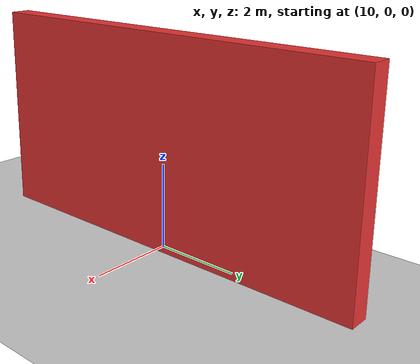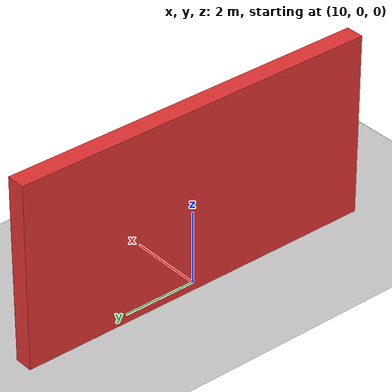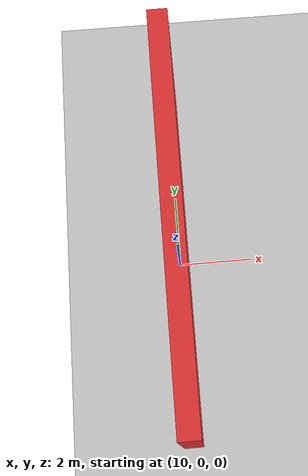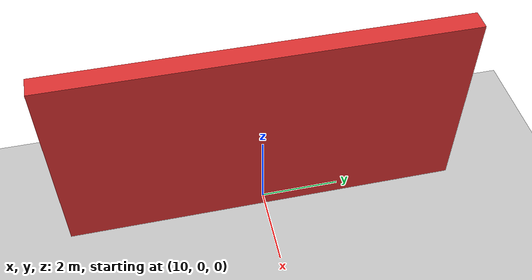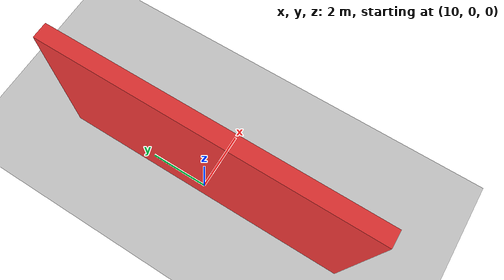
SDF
<?xml version="1.0" encoding="UTF-8"?>
<sdf version="1.9">
  <world name="collision_test_world">
    <physics type="ode">
      <max_step_size>0.004</max_step_size>
      <real_time_factor>1.0</real_time_factor>
      <real_time_update_rate>250</real_time_update_rate>
    </physics>
    <gravity>0 0 -9.8</gravity>
    <magnetic_field>6e-06 2.3e-05 -4.2e-05</magnetic_field>
    <atmosphere type="adiabatic"/>
    <scene>
      <grid>false</grid>
      <ambient>0.6 0.6 0.6 1</ambient>
      <background>0.7 0.7 0.8 1</background>
      <shadows>true</shadows>
    </scene>

    <!-- Sun Light -->
    <light name="sunUTC" type="directional">
      <pose>0 0 500 0 -0 0</pose>
      <cast_shadows>true</cast_shadows>
      <intensity>1.2</intensity>
      <direction>0.1 0.5 -0.8</direction>
      <diffuse>0.95 0.95 0.95 1</diffuse>
      <specular>0.3 0.3 0.3 1</specular>
      <attenuation>
        <range>2000</range>
        <linear>0</linear>
        <constant>1</constant>
        <quadratic>0</quadratic>
      </attenuation>
    </light>

    <!-- Ground Plane -->
    <model name="ground_plane">
      <static>true</static>
      <link name="link">
        <collision name="collision">
          <geometry>
            <plane>
              <normal>0 0 1</normal>
              <size>500 500</size>
            </plane>
          </geometry>
          <surface>
            <friction>
              <ode/>
            </friction>
          </surface>
        </collision>
        <visual name="visual">
          <geometry>
            <plane>
              <normal>0 0 1</normal>
              <size>500 500</size>
            </plane>
          </geometry>
          <material>
            <ambient>0.8 0.8 0.8 1</ambient>
            <diffuse>0.8 0.8 0.8 1</diffuse>
          </material>
        </visual>
      </link>
      <pose>0 0 0 0 0 0</pose>
    </model>

    <!-- Collision Wall Target -->
    <!-- Position: (10.0, 0.0, 2.5) m -->
    <!-- Dimensions: 0.5m thick (X), 10.0m wide (Y), 5.0m tall (Z) -->
    <!-- Front face at X = 9.75m -->
    <model name="collision_wall">
      <static>true</static>
      <pose>10.0 0.0 2.5 0 0 0</pose>
      <link name="link">
        <collision name="collision">
          <geometry>
            <box>
              <size>0.5 10.0 5.0</size>
            </box>
          </geometry>
          <surface>
            <friction>
              <ode/>
            </friction>
            <bounce>
              <restitution_coefficient>0.1</restitution_coefficient>
              <threshold>100000</threshold>
            </bounce>
            <contact>
              <ode/>
            </contact>
          </surface>
        </collision>
        <visual name="visual">
          <geometry>
            <box>
              <size>0.5 10.0 5.0</size>
            </box>
          </geometry>
          <material>
            <ambient>0.9 0.2 0.2 1</ambient>
            <diffuse>0.9 0.2 0.2 1</diffuse>
            <specular>0.2 0.2 0.2 1</specular>
          </material>
        </visual>
      </link>
    </model>

    <spherical_coordinates>
      <surface_model>EARTH_WGS84</surface_model>
      <world_frame_orientation>ENU</world_frame_orientation>
      <latitude_deg>47.397971057728974</latitude_deg>
      <longitude_deg>8.546163739800146</longitude_deg>
      <elevation>0</elevation>
    </spherical_coordinates>
  </world>
</sdf>
